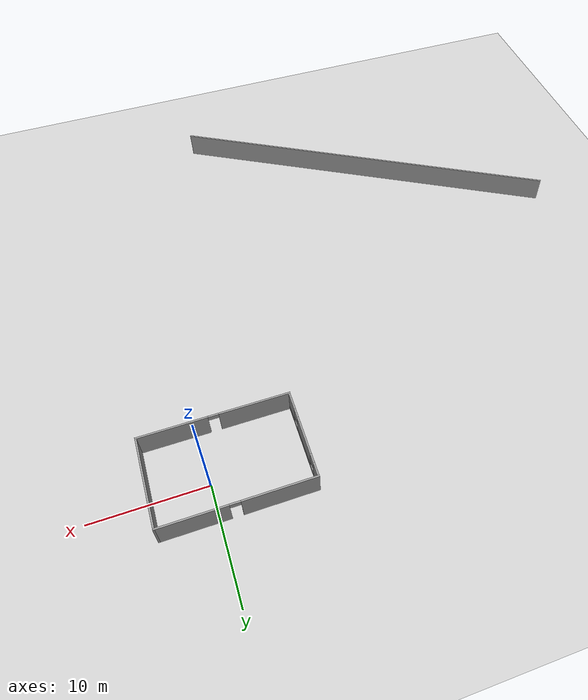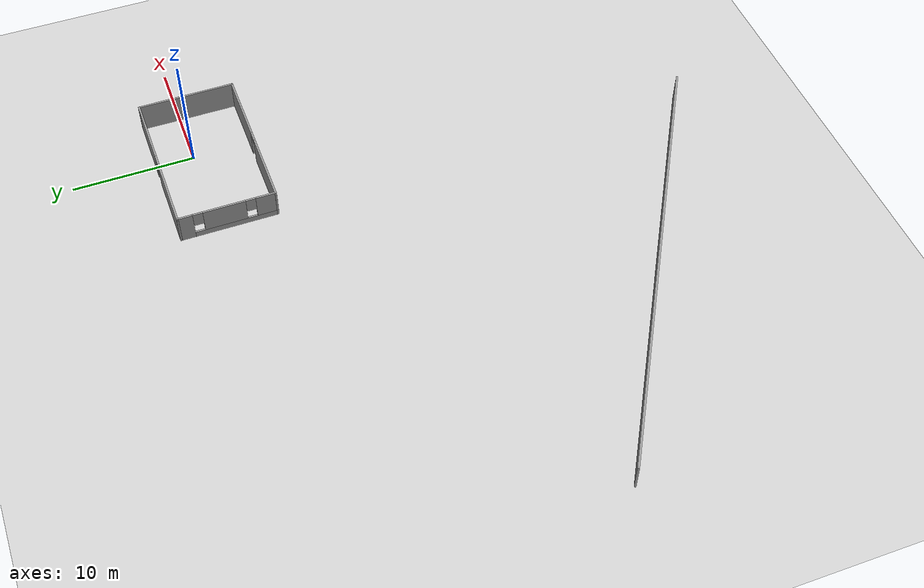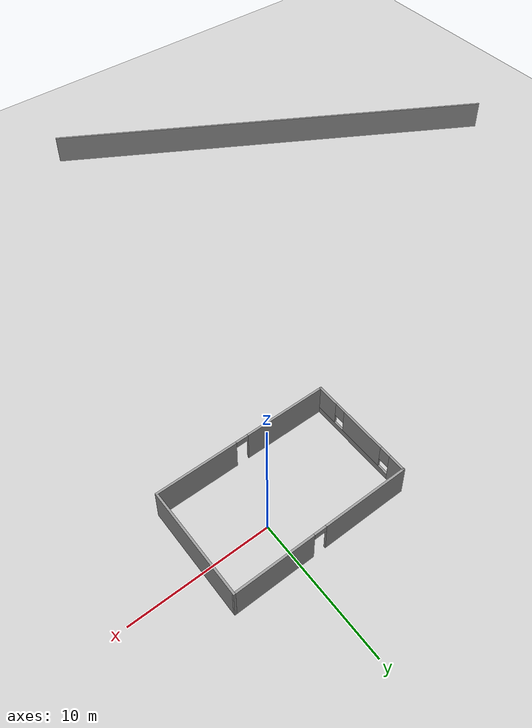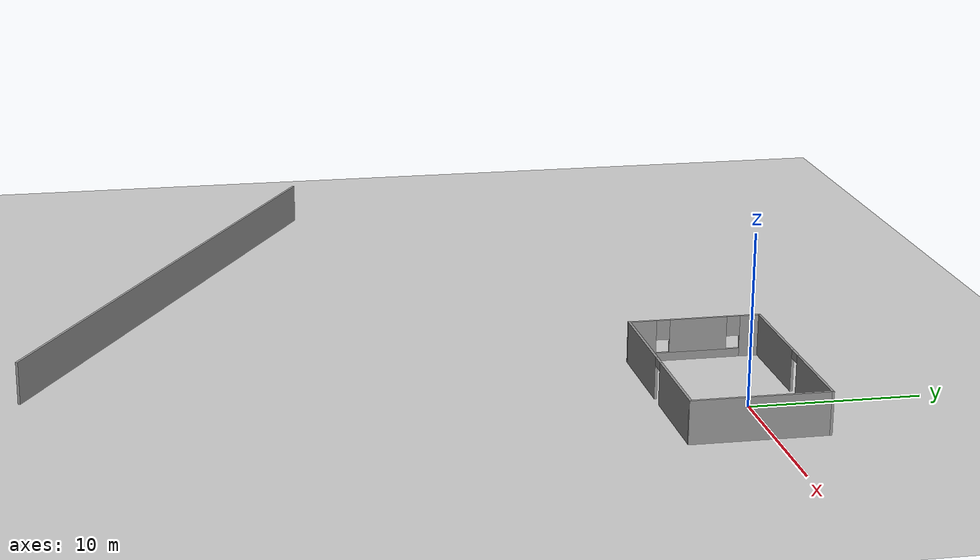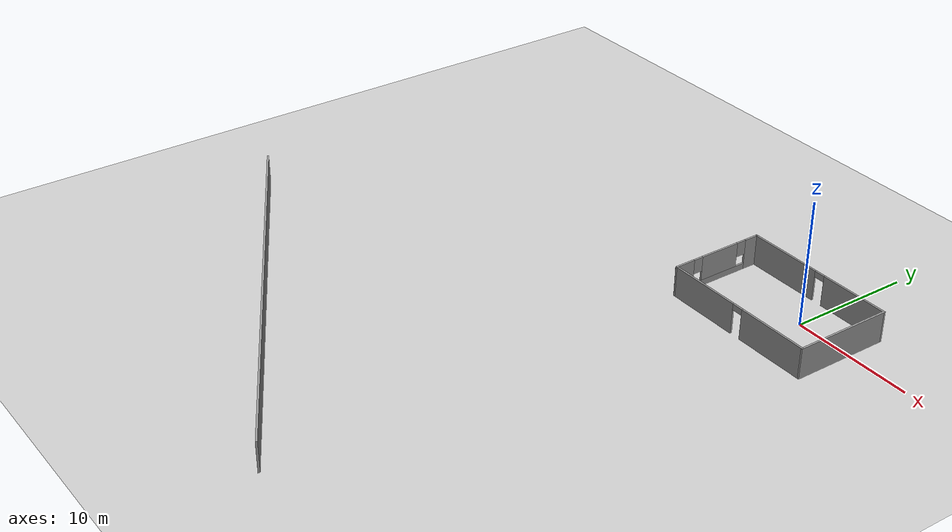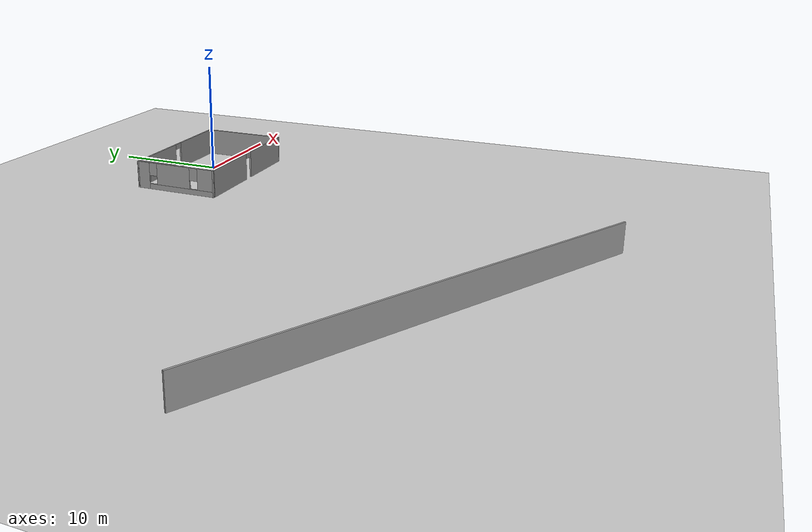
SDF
<sdf version="1.7">
 <world name="default">
  <light name="sun" type="directional">
   <pose>0 0 10 0 -0 0</pose>
   <diffuse>0.8 0.8 0.8 1</diffuse>
   <specular>0.2 0.2 0.2 1</specular>
   <attenuation>
    <range>1000</range>
    <constant>0.9</constant>
    <linear>0.01</linear>
    <quadratic>0.001</quadratic>
   </attenuation>
   <direction>-0.5 0.1 -0.9</direction>
   <spot><inner_angle>0</inner_angle><outer_angle>0</outer_angle><falloff>0</falloff></spot>
  </light>
  <model name="ground_plane">
   <static>1</static>
   <link name="link">
    <collision name="collision">
     <geometry><plane><normal>0 0 1</normal><size>100 100</size></plane></geometry>
     <surface>
      <contact><collide_bitmask>65535</collide_bitmask></contact>
      <friction><ode><mu>100</mu><mu2>50</mu2></ode></friction>
     </surface>
    </collision>
    <visual name="visual">
     <cast_shadows>0</cast_shadows>
     <geometry><plane><normal>0 0 1</normal><size>100 100</size></plane></geometry>
     <material>
      <script><uri>file://media/materials/scripts/gazebo.material</uri><name>Gazebo/Grey</name></script>
     </material>
    </visual>
   </link>
  </model>
  <gravity>0 0 -9.8</gravity>
  <magnetic_field>6e-06 2.3e-05 -4.2e-05</magnetic_field>
  <atmosphere type="adiabatic"/>
  <physics type="ode">
   <max_step_size>0.001</max_step_size>
   <real_time_factor>1</real_time_factor>
   <real_time_update_rate>1000</real_time_update_rate>
  </physics>
  <scene><ambient>0.4 0.4 0.4 1</ambient><background>0.7 0.7 0.7 1</background><shadows>1</shadows></scene>
  <audio><device>default</device></audio>
  <spherical_coordinates>
   <surface_model>EARTH_WGS84</surface_model>
   <latitude_deg>0</latitude_deg>
   <longitude_deg>0</longitude_deg>
   <elevation>0</elevation>
   <heading_deg>0</heading_deg>
  </spherical_coordinates>
  <model name="Test">
   <pose>-17.8343 -18.348 0 0 -0 0</pose>
   <link name="Wall_12">
    <pose>16.1523 13.5988 0 0 -0 0</pose>
    <visual name="Wall_12_Visual_0">
     <pose>-3.43937 0 1.25 0 -0 0</pose>
     <geometry><box><size>6.12126 0.15 2.5</size></box></geometry>
     <material>
      <script><uri>file://media/materials/scripts/gazebo.material</uri><name>Gazebo/Grey</name></script>
      <ambient>1 1 1 1</ambient>
     </material>
     <meta><layer>0</layer></meta>
    </visual>
    <collision name="Wall_12_Collision_0">
     <geometry><box><size>6.12126 0.15 2.5</size></box></geometry>
     <pose>-3.43937 0 1.25 0 -0 0</pose>
    </collision>
    <visual name="Wall_12_Visual_1">
     <pose>3.51063 0 1.25 0 -0 0</pose>
     <geometry><box><size>5.97874 0.15 2.5</size></box></geometry>
     <material>
      <script><uri>file://media/materials/scripts/gazebo.material</uri><name>Gazebo/Grey</name></script>
      <ambient>1 1 1 1</ambient>
     </material>
     <meta><layer>0</layer></meta>
    </visual>
    <collision name="Wall_12_Collision_1">
     <geometry><box><size>5.97874 0.15 2.5</size></box></geometry>
     <pose>3.51063 0 1.25 0 -0 0</pose>
    </collision>
    <visual name="Wall_12_Visual_2">
     <pose>0.07126 0 2.25 0 -0 0</pose>
     <geometry><box><size>0.9 0.15 0.5</size></box></geometry>
     <material>
      <script><uri>file://media/materials/scripts/gazebo.material</uri><name>Gazebo/Grey</name></script>
      <ambient>1 1 1 1</ambient>
     </material>
     <meta><layer>0</layer></meta>
    </visual>
    <collision name="Wall_12_Collision_2">
     <geometry><box><size>0.9 0.15 0.5</size></box></geometry>
     <pose>0.07126 0 2.25 0 -0 0</pose>
    </collision>
   </link>
   <link name="Wall_13">
    <collision name="Wall_13_Collision">
     <geometry><box><size>8 0.15 2.5</size></box></geometry>
     <pose>0 0 1.25 0 -0 0</pose>
    </collision>
    <visual name="Wall_13_Visual">
     <pose>0 0 1.25 0 -0 0</pose>
     <geometry><box><size>8 0.15 2.5</size></box></geometry>
     <material>
      <script><uri>file://media/materials/scripts/gazebo.material</uri><name>Gazebo/Grey</name></script>
      <ambient>1 1 1 1</ambient>
     </material>
     <meta><layer>0</layer></meta>
    </visual>
    <pose>22.5773 17.5238 0 0 -0 1.5708</pose>
   </link>
   <link name="Wall_14">
    <pose>16.1523 21.4488 0 0 -0 3.14159</pose>
    <visual name="Wall_14_Visual_0">
     <pose>-3.58953 0 1.25 0 -0 0</pose>
     <geometry><box><size>5.82094 0.15 2.5</size></box></geometry>
     <material>
      <script><uri>file://media/materials/scripts/gazebo.material</uri><name>Gazebo/Grey</name></script>
      <ambient>1 1 1 1</ambient>
     </material>
     <meta><layer>0</layer></meta>
    </visual>
    <collision name="Wall_14_Collision_0">
     <geometry><box><size>5.82094 0.15 2.5</size></box></geometry>
     <pose>-3.58953 0 1.25 0 -0 0</pose>
    </collision>
    <visual name="Wall_14_Visual_1">
     <pose>3.36047 0 1.25 0 -0 0</pose>
     <geometry><box><size>6.27906 0.15 2.5</size></box></geometry>
     <material>
      <script><uri>file://media/materials/scripts/gazebo.material</uri><name>Gazebo/Grey</name></script>
      <ambient>1 1 1 1</ambient>
     </material>
     <meta><layer>0</layer></meta>
    </visual>
    <collision name="Wall_14_Collision_1">
     <geometry><box><size>6.27906 0.15 2.5</size></box></geometry>
     <pose>3.36047 0 1.25 0 -0 0</pose>
    </collision>
    <visual name="Wall_14_Visual_2">
     <pose>-0.229064 0 2.25 0 -0 0</pose>
     <geometry><box><size>0.9 0.15 0.5</size></box></geometry>
     <material>
      <script><uri>file://media/materials/scripts/gazebo.material</uri><name>Gazebo/Grey</name></script>
      <ambient>1 1 1 1</ambient>
     </material>
     <meta><layer>0</layer></meta>
    </visual>
    <collision name="Wall_14_Collision_2">
     <geometry><box><size>0.9 0.15 0.5</size></box></geometry>
     <pose>-0.229064 0 2.25 0 -0 0</pose>
    </collision>
   </link>
   <link name="Wall_15">
    <collision name="Wall_15_Collision">
     <geometry><box><size>0.16 0.15 2.5</size></box></geometry>
     <pose>0 0 1.25 0 -0 0</pose>
    </collision>
    <visual name="Wall_15_Visual">
     <pose>0 0 1.25 0 -0 0</pose>
     <geometry><box><size>0.16 0.15 2.5</size></box></geometry>
     <material>
      <script><uri>file://media/materials/scripts/gazebo.material</uri><name>Gazebo/Grey</name></script>
      <ambient>1 1 1 1</ambient>
     </material>
     <meta><layer>0</layer></meta>
    </visual>
    <pose>9.7323 21.4488 0 0 -0 0</pose>
   </link>
   <link name="Wall_16">
    <pose>9.7373 17.5238 0 0 -0 -1.5708</pose>
    <visual name="Wall_16_Visual_0">
     <pose>-3.36728 0 1.25 0 -0 0</pose>
     <geometry><box><size>1.26544 0.15 2.5</size></box></geometry>
     <material>
      <script><uri>file://media/materials/scripts/gazebo.material</uri><name>Gazebo/Grey</name></script>
      <ambient>1 1 1 1</ambient>
     </material>
     <meta><layer>0</layer></meta>
    </visual>
    <collision name="Wall_16_Collision_0">
     <geometry><box><size>1.26544 0.15 2.5</size></box></geometry>
     <pose>-3.36728 0 1.25 0 -0 0</pose>
    </collision>
    <visual name="Wall_16_Visual_1">
     <pose>0.632723 0 0.25 0 -0 0</pose>
     <geometry><box><size>6.73456 0.15 0.5</size></box></geometry>
     <material>
      <script><uri>file://media/materials/scripts/gazebo.material</uri><name>Gazebo/Grey</name></script>
      <ambient>1 1 1 1</ambient>
     </material>
     <meta><layer>0</layer></meta>
    </visual>
    <collision name="Wall_16_Collision_1">
     <geometry><box><size>6.73456 0.15 0.5</size></box></geometry>
     <pose>0.632723 0 0.25 0 -0 0</pose>
    </collision>
    <visual name="Wall_16_Visual_2">
     <pose>-0.217352 0 1.5 0 -0 0</pose>
     <geometry><box><size>3.4344 0.15 2</size></box></geometry>
     <material>
      <script><uri>file://media/materials/scripts/gazebo.material</uri><name>Gazebo/Grey</name></script>
      <ambient>1 1 1 1</ambient>
     </material>
     <meta><layer>0</layer></meta>
    </visual>
    <collision name="Wall_16_Collision_2">
     <geometry><box><size>3.4344 0.15 2</size></box></geometry>
     <pose>-0.217352 0 1.5 0 -0 0</pose>
    </collision>
    <visual name="Wall_16_Visual_3">
     <pose>3.14993 0 1.5 0 -0 0</pose>
     <geometry><box><size>1.70015 0.15 2</size></box></geometry>
     <material>
      <script><uri>file://media/materials/scripts/gazebo.material</uri><name>Gazebo/Grey</name></script>
      <ambient>1 1 1 1</ambient>
     </material>
     <meta><layer>0</layer></meta>
    </visual>
    <collision name="Wall_16_Collision_3">
     <geometry><box><size>1.70015 0.15 2</size></box></geometry>
     <pose>3.14993 0 1.5 0 -0 0</pose>
    </collision>
    <visual name="Wall_16_Visual_4">
     <pose>-2.33455 0 1.9 0 -0 0</pose>
     <geometry><box><size>0.8 0.15 1.2</size></box></geometry>
     <material>
      <script><uri>file://media/materials/scripts/gazebo.material</uri><name>Gazebo/Grey</name></script>
      <ambient>1 1 1 1</ambient>
     </material>
     <meta><layer>0</layer></meta>
    </visual>
    <collision name="Wall_16_Collision_4">
     <geometry><box><size>0.8 0.15 1.2</size></box></geometry>
     <pose>-2.33455 0 1.9 0 -0 0</pose>
    </collision>
    <visual name="Wall_16_Visual_5">
     <pose>1.89985 0 1.9 0 -0 0</pose>
     <geometry><box><size>0.8 0.15 1.2</size></box></geometry>
     <material>
      <script><uri>file://media/materials/scripts/gazebo.material</uri><name>Gazebo/Grey</name></script>
      <ambient>1 1 1 1</ambient>
     </material>
     <meta><layer>0</layer></meta>
    </visual>
    <collision name="Wall_16_Collision_5">
     <geometry><box><size>0.8 0.15 1.2</size></box></geometry>
     <pose>1.89985 0 1.9 0 -0 0</pose>
    </collision>
   </link>
   <link name="Wall_3">
    <collision name="Wall_3_Collision">
     <geometry><box><size>38.25 0.15 2.5</size></box></geometry>
     <pose>0 0 1.25 0 -0 0</pose>
    </collision>
    <visual name="Wall_3_Visual">
     <pose>0 0 1.25 0 -0 0</pose>
     <geometry><box><size>38.25 0.15 2.5</size></box></geometry>
     <material>
      <script><uri>file://media/materials/scripts/gazebo.material</uri><name>Gazebo/Grey</name></script>
      <ambient>1 1 1 1</ambient>
     </material>
     <meta><layer>0</layer></meta>
    </visual>
    <pose>-6.05207 -11.8963 0 0 -0 -0.523599</pose>
   </link>
   <static>1</static>
  </model>
 </world>
</sdf>
